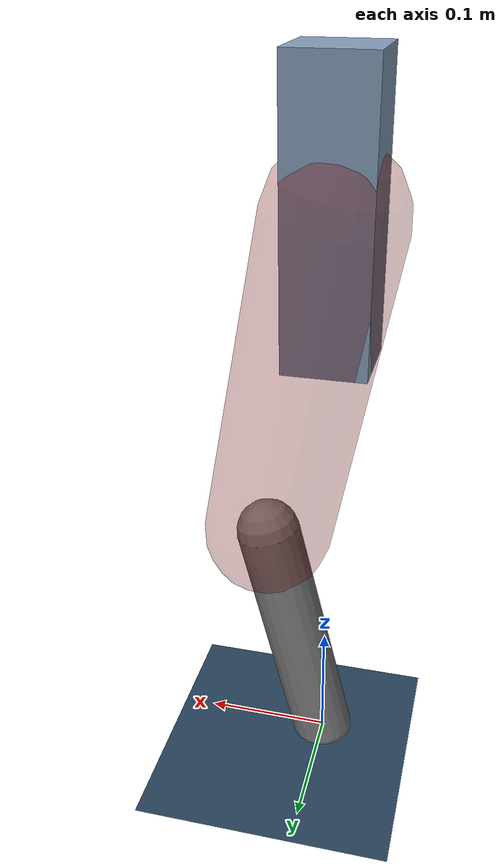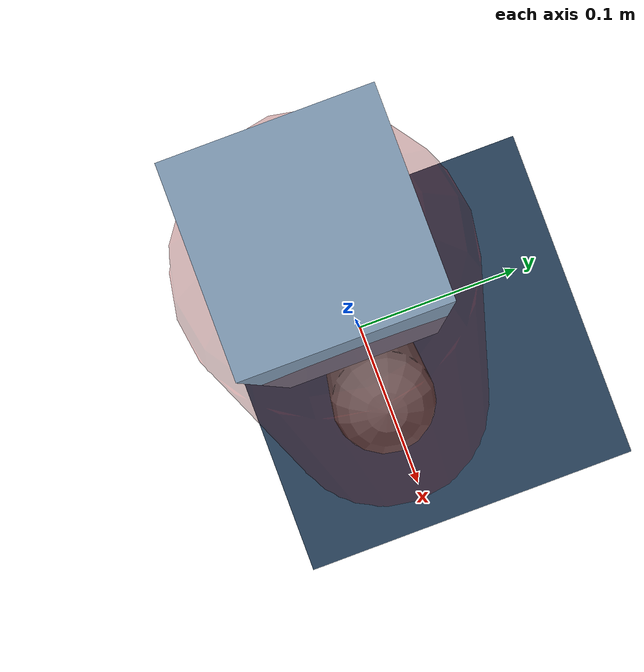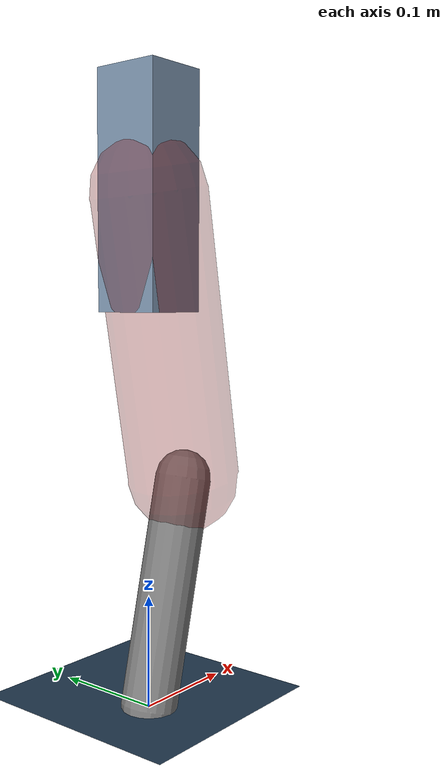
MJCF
<mujoco model="Hopper2D">
	<compiler inertiafromgeom="true" angle="radian" />
	<option timestep="0.001" integrator="implicit" cone="elliptic" solver="Newton" tolerance="1e-10" />

	<default>
		<geom contype="1" conaffinity="1" condim="3" friction="2 0.005 0.0001" solref="0.005 1" />
		<joint limited="true" damping="0.1" />
	</default>

	<asset>
		<texture name="skybox" type="skybox" builtin="gradient" rgb1=".4 .6 .8" rgb2="0 0 0" width="800" height="800" />
		<texture name="grid" type="2d" builtin="checker" rgb1=".1 .2 .3" rgb2=".2 .3 .4" width="300" height="300" mark="edge" markrgb=".2 .3 .4" />
		<material name="ground" texture="grid" texrepeat="1 1" texuniform="true" reflectance="0.1" />
		<material name="leg" rgba="0.5 0.6 0.7 1" />
	</asset>

	<worldbody>

		<geom name="floor" type="plane" size="5 5 0.25" material="ground" />

		<light directional="false" diffuse="0.8 0.8 0.8" specular="0.3 0.3 0.3" pos="0 0 2" dir="0 0 -1" />
		<light mode="targetbodycom" target="base" directional="false" diffuse="0.8 0.8 0.8" specular="0.3 0.3 0.3" pos="0 0 2" dir="0 0 -1" />

		<camera name="fixed" pos="0 -2 1" xyaxes="1 0 0 0 0 1" />
		<camera name="tracking" mode="trackcom" pos="0 -3 1" />

		<body name="root" pos="0 0 0.44811378932236967">
			<joint name="slide_x" type="slide" axis="1 0 0" range="-100 100" />
			<joint name="slide_z" type="slide" axis="0 0 1" range="0 10" />

			<body name="base" pos="0 0 0">
				<geom name="torso" type="box" size="0.03 0.03 0.1" mass="2.122" material="leg" />

				<body name="link1" pos="0 0 0" euler="0 1.3822407903212235 0">
					<joint type="hinge" axis="0 -1 0" pos="0 0 0" name="hinge1" limited="true" range="-3.14 3.14" stiffness="0" damping="0.1" />
					<geom name="thigh" type="capsule" fromto="0 0 0 0.2525385089268336 0 0" size="0.05" rgba="0.5 0 0 0.3" mass="0.8630001232097674" />

					<body name="link2" pos="0.2525385089268336 0 0" euler="0 0.42090094967475755 0">
						<joint type="hinge" axis="0 -1 0" pos="0 0 0" name="hinge2" limited="true" range="-3.14 3.14" stiffness="0" damping="0.1" />
						<geom name="shank" type="capsule" fromto="0 0 0 0.20557528039553605 0 0" size="0.025" mass="0.40556022431642885" />

					</body>
				</body>
			</body>
		</body>
	</worldbody>

	<actuator>
		<motor name="torque1" joint="hinge1" ctrlrange="-50.058010616994125 50.058010616994125" ctrllimited="true" gear="1" />
		<motor name="torque2" joint="hinge2" ctrlrange="-85.58926374505532 85.58926374505532" ctrllimited="true" gear="1" />
	</actuator>
</mujoco>
